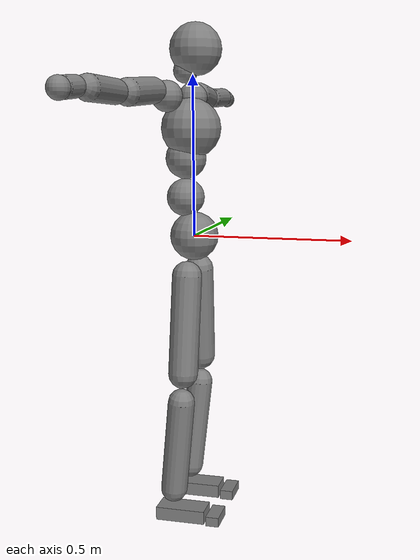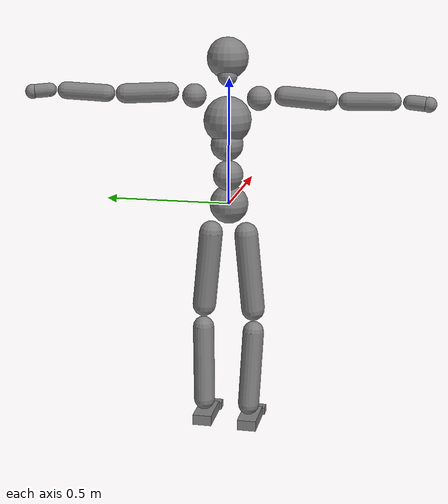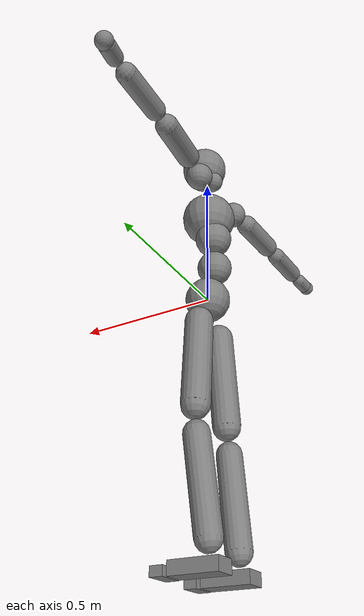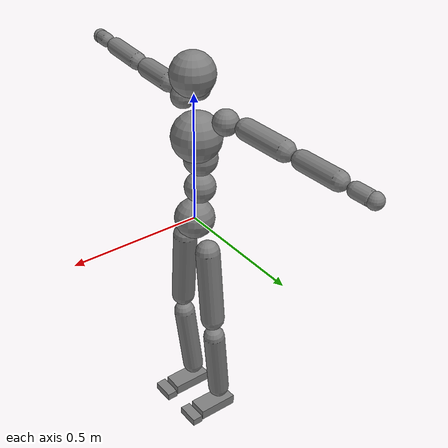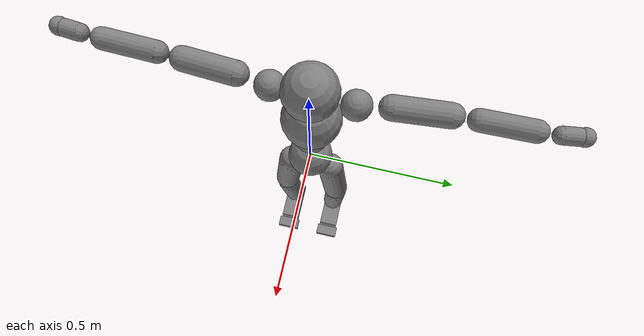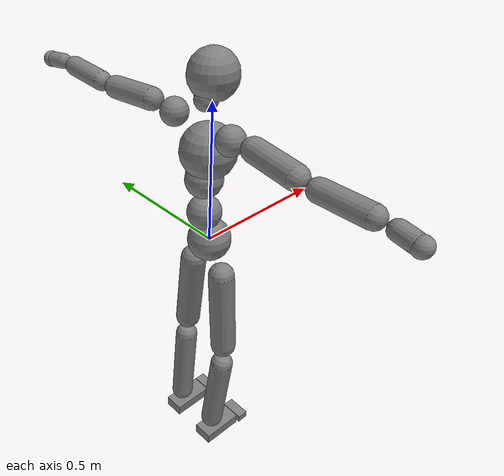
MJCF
<mujoco model="smpl">
  <compiler angle="radian" />
  <default>
    <motor ctrlrange="-1 1" ctrllimited="true" />
    <geom condim="1" friction="1.0 0.05 0.05" solimp=".9 .99 .003" solref=".015 1" />
    <joint limited="true" solimplimit="0 .99 .01" />
    <site size=".04" group="3" />
    <default class="force-torque">
      <site type="box" size=".01 .01 .02" rgba="1 0 0 1" />
    </default>
    <default class="touch">
      <site type="capsule" rgba="0 0 1 .3" />
    </default>
  </default>
  <worldbody>
    <body name="Pelvis" pos="0.000000 0.000000 0.000000">
      <freejoint name="Pelvis" />
      <geom type="sphere" contype="1" conaffinity="1" density="3256.665988" size="0.076500" pos="0.000000 0.000000 0.000000" />
      <body name="L_Hip" pos="-0.006800 0.069500 -0.091400">
        <joint name="L_Hip_x" type="hinge" pos="0 0 0" axis="1 0 0" actuatorfrcrange="-300 300" stiffness="500" damping="50" armature="0.02" range="-0.5236 1.5708" />
        <joint name="L_Hip_y" type="hinge" pos="0 0 0" axis="0 1 0" actuatorfrcrange="-300 300" stiffness="500" damping="50" armature="0.02" range="-2.4435 1.0472" />
        <joint name="L_Hip_z" type="hinge" pos="0 0 0" axis="0 0 1" actuatorfrcrange="-300 300" stiffness="500" damping="50" armature="0.02" range="-0.6109 1.0472" />
        <geom type="capsule" contype="1" conaffinity="1" density="2138.261257" fromto="-0.000315 0.002401 -0.026264 -0.003960 0.030184 -0.330176" size="0.046750" />
        <body name="L_Knee" pos="-0.004500 0.034300 -0.375200">
          <joint name="L_Knee_x" type="hinge" pos="0 0 0" axis="1 0 0" actuatorfrcrange="-200 200" stiffness="500" damping="50" armature="0.02" range="-0.5236 0.5236" />
          <joint name="L_Knee_y" type="hinge" pos="0 0 0" axis="0 1 0" actuatorfrcrange="-200 200" stiffness="500" damping="50" armature="0.02" range="0 2.7925" />
          <joint name="L_Knee_z" type="hinge" pos="0 0 0" axis="0 0 1" actuatorfrcrange="-200 200" stiffness="500" damping="50" armature="0.02" range="-0.5236 0.5236" />
          <geom type="capsule" contype="1" conaffinity="1" density="1778.010539" fromto="-0.005244 -0.001632 -0.047760 -0.038456 -0.011968 -0.350240" size="0.042500" />
          <body name="L_Ankle" pos="-0.043700 -0.013600 -0.398000">
            <joint name="L_Ankle_x" type="hinge" pos="0 0 0" axis="1 0 0" actuatorfrcrange="-100 100" stiffness="400" damping="40" armature="0.02" range="-0.5236 0.5236" />
            <joint name="L_Ankle_y" type="hinge" pos="0 0 0" axis="0 1 0" actuatorfrcrange="-100 100" stiffness="400" damping="40" armature="0.02" range="-0.9599 0.9599" />
            <joint name="L_Ankle_z" type="hinge" pos="0 0 0" axis="0 0 1" actuatorfrcrange="-100 100" stiffness="400" damping="40" armature="0.02" range="-0.6981 0.6981" />
            <geom type="box" contype="1" conaffinity="1" density="1384.083045" pos="0.034600 0.002400 -0.027900" size="0.080000 0.038250 0.021250" quat="1.0000 0.0000 0.0000 0.0000" />
            <body name="L_Toe" pos="0.119300 0.012400 -0.025800">
              <joint name="L_Toe_x" type="hinge" pos="0 0 0" axis="1 0 0" actuatorfrcrange="-75 75" stiffness="200" damping="20" armature="0.02" range="-0.5236 0.5236" />
              <joint name="L_Toe_y" type="hinge" pos="0 0 0" axis="0 1 0" actuatorfrcrange="-75 75" stiffness="200" damping="20" armature="0.02" range="-1.0472 1.0472" />
              <joint name="L_Toe_z" type="hinge" pos="0 0 0" axis="0 0 1" actuatorfrcrange="-75 75" stiffness="200" damping="20" armature="0.02" range="-0.5236 0.5236" />
              <geom type="box" contype="1" conaffinity="1" density="1384.083045" pos="0.025200 -0.010000 -0.008000" size="0.021250 0.045000 0.015300" quat="1.0000 0.0000 0.0000 0.0000" />
            </body>
          </body>
        </body>
      </body>
      <body name="R_Hip" pos="-0.004300 -0.067700 -0.090500">
        <joint name="R_Hip_x" type="hinge" pos="0 0 0" axis="1 0 0" actuatorfrcrange="-300 300" stiffness="500" damping="50" armature="0.02" range="-1.5708 0.5236" />
        <joint name="R_Hip_y" type="hinge" pos="0 0 0" axis="0 1 0" actuatorfrcrange="-300 300" stiffness="500" damping="50" armature="0.02" range="-2.4435 1.0472" />
        <joint name="R_Hip_z" type="hinge" pos="0 0 0" axis="0 0 1" actuatorfrcrange="-300 300" stiffness="500" damping="50" armature="0.02" range="-1.0472 0.6109" />
        <geom type="capsule" contype="1" conaffinity="1" density="2137.208017" fromto="-0.000623 -0.002681 -0.026782 -0.007832 -0.033704 -0.336688" size="0.046750" />
        <body name="R_Knee" pos="-0.008900 -0.038300 -0.382600">
          <joint name="R_Knee_x" type="hinge" pos="0 0 0" axis="1 0 0" actuatorfrcrange="-200 200" stiffness="500" damping="50" armature="0.02" range="-0.5236 0.5236" />
          <joint name="R_Knee_y" type="hinge" pos="0 0 0" axis="0 1 0" actuatorfrcrange="-200 200" stiffness="500" damping="50" armature="0.02" range="0 2.7925" />
          <joint name="R_Knee_z" type="hinge" pos="0 0 0" axis="0 0 1" actuatorfrcrange="-200 200" stiffness="500" damping="50" armature="0.02" range="-0.5236 0.5236" />
          <geom type="capsule" contype="1" conaffinity="1" density="1777.977503" fromto="-0.005076 0.001896 -0.047808 -0.037224 0.013904 -0.350592" size="0.042500" />
          <body name="R_Ankle" pos="-0.042300 0.015800 -0.398400">
            <joint name="R_Ankle_x" type="hinge" pos="0 0 0" axis="1 0 0" actuatorfrcrange="-100 100" stiffness="400" damping="40" armature="0.02" range="-0.5236 0.5236" />
            <joint name="R_Ankle_y" type="hinge" pos="0 0 0" axis="0 1 0" actuatorfrcrange="-100 100" stiffness="400" damping="40" armature="0.02" range="-0.9599 0.9599" />
            <joint name="R_Ankle_z" type="hinge" pos="0 0 0" axis="0 0 1" actuatorfrcrange="-100 100" stiffness="400" damping="40" armature="0.02" range="-0.6981 0.6981" />
            <geom type="box" contype="1" conaffinity="1" density="1384.083045" pos="0.034600 -0.002400 -0.027900" size="0.080000 0.038250 0.021250" quat="1.0000 0.0000 0.0000 0.0000" />
            <body name="R_Toe" pos="0.119300 -0.012400 -0.025800">
              <joint name="R_Toe_x" type="hinge" pos="0 0 0" axis="1 0 0" actuatorfrcrange="-75 75" stiffness="200" damping="20" armature="0.02" range="-0.5236 0.5236" />
              <joint name="R_Toe_y" type="hinge" pos="0 0 0" axis="0 1 0" actuatorfrcrange="-75 75" stiffness="200" damping="20" armature="0.02" range="-1.0472 1.0472" />
              <joint name="R_Toe_z" type="hinge" pos="0 0 0" axis="0 0 1" actuatorfrcrange="-75 75" stiffness="200" damping="20" armature="0.02" range="-0.5236 0.5236" />
              <geom type="box" contype="1" conaffinity="1" density="1384.083045" pos="0.025200 0.010000 -0.008000" size="0.021250 0.045000 0.015300" quat="1.0000 0.0000 0.0000 0.0000" />
            </body>
          </body>
        </body>
      </body>
      <body name="Torso" pos="-0.026700 -0.002500 0.109000">
        <joint name="Torso_x" type="hinge" pos="0 0 0" axis="1 0 0" actuatorfrcrange="-300 300" stiffness="1000" damping="100" armature="0.02" range="-1.0472 1.0472" />
        <joint name="Torso_y" type="hinge" pos="0 0 0" axis="0 1 0" actuatorfrcrange="-300 300" stiffness="1000" damping="100" armature="0.02" range="-1.0472 1.5708" />
        <joint name="Torso_z" type="hinge" pos="0 0 0" axis="0 0 1" actuatorfrcrange="-300 300" stiffness="1000" damping="100" armature="0.02" range="-0.8727 0.8727" />
        <geom type="sphere" contype="1" conaffinity="1" density="3256.665988" size="0.059500" pos="0.000110 0.000550 0.013520" />
        <body name="Spine" pos="0.001100 0.005500 0.135200">
          <joint name="Spine_x" type="hinge" pos="0 0 0" axis="1 0 0" actuatorfrcrange="-200 200" stiffness="1000" damping="100" armature="0.02" range="-1.0472 1.0472" />
          <joint name="Spine_y" type="hinge" pos="0 0 0" axis="0 1 0" actuatorfrcrange="-200 200" stiffness="1000" damping="100" armature="0.02" range="-1.0472 1.5708" />
          <joint name="Spine_z" type="hinge" pos="0 0 0" axis="0 0 1" actuatorfrcrange="-200 200" stiffness="1000" damping="100" armature="0.02" range="-0.8727 0.8727" />
          <geom type="sphere" contype="1" conaffinity="1" density="3256.665988" size="0.063750" pos="0.000000 0.000000 0.000000" />
          <body name="Chest" pos="0.025400 0.001500 0.052900">
            <joint name="Chest_x" type="hinge" pos="0 0 0" axis="1 0 0" actuatorfrcrange="-150 150" stiffness="1000" damping="100" armature="0.02" range="-1.0472 1.0472" />
            <joint name="Chest_y" type="hinge" pos="0 0 0" axis="0 1 0" actuatorfrcrange="-150 150" stiffness="1000" damping="100" armature="0.02" range="-1.0472 1.5708" />
            <joint name="Chest_z" type="hinge" pos="0 0 0" axis="0 0 1" actuatorfrcrange="-150 150" stiffness="1000" damping="100" armature="0.02" range="-0.8727 0.8727" />
            <geom type="sphere" contype="1" conaffinity="1" density="3256.665988" size="0.093500" pos="-0.008000 0.000000 0.040000" />
            <body name="Neck" pos="-0.042900 -0.002800 0.213900">
              <joint name="Neck_x" type="hinge" pos="0 0 0" axis="1 0 0" actuatorfrcrange="-75 75" stiffness="500" damping="50" armature="0.02" range="-0.8727 0.8727" />
              <joint name="Neck_y" type="hinge" pos="0 0 0" axis="0 1 0" actuatorfrcrange="-75 75" stiffness="500" damping="50" armature="0.02" range="-0.6981 1.0472" />
              <joint name="Neck_z" type="hinge" pos="0 0 0" axis="0 0 1" actuatorfrcrange="-75 75" stiffness="500" damping="50" armature="0.02" range="-0.7854 0.7854" />
              <geom type="sphere" contype="1" conaffinity="1" density="1628.332994" size="0.038250" pos="0.020000 0.000000 0.000000" />
              <body name="Head" pos="0.051300 0.005200 0.065000">
                <joint name="Head_x" type="hinge" pos="0 0 0" axis="1 0 0" actuatorfrcrange="-25 25" stiffness="200" damping="20" armature="0.02" range="-0.8727 0.8727" />
                <joint name="Head_y" type="hinge" pos="0 0 0" axis="0 1 0" actuatorfrcrange="-25 25" stiffness="200" damping="20" armature="0.02" range="-0.6981 1.0472" />
                <joint name="Head_z" type="hinge" pos="0 0 0" axis="0 0 1" actuatorfrcrange="-25 25" stiffness="200" damping="20" armature="0.02" range="-0.7854 0.7854" />
                <geom type="sphere" contype="1" conaffinity="1" density="1628.332994" size="0.080750" pos="0.000000 0.000000 0.000000" />
              </body>
            </body>
            <body name="L_Thorax" pos="-0.034100 0.078800 0.121700">
              <joint name="L_Thorax_x" type="hinge" pos="0 0 0" axis="1 0 0" actuatorfrcrange="-200 200" stiffness="500" damping="50" armature="0.02" range="-0.6981 0.5236" />
              <joint name="L_Thorax_y" type="hinge" pos="0 0 0" axis="0 1 0" actuatorfrcrange="-200 200" stiffness="500" damping="50" armature="0.02" range="-0.5236 0.5236" />
              <joint name="L_Thorax_z" type="hinge" pos="0 0 0" axis="0 0 1" actuatorfrcrange="-200 200" stiffness="500" damping="50" armature="0.02" range="-0.5236 0.5236" />
              <geom type="sphere" contype="1" conaffinity="1" density="1628.332994" size="0.046750" pos="-0.004450 0.045500 0.015250" />
              <body name="L_Shoulder" pos="-0.008900 0.091000 0.030500">
                <joint name="L_Shoulder_x" type="hinge" pos="0 0 0" axis="1 0 0" actuatorfrcrange="-150 150" stiffness="400" damping="40" armature="0.02" range="-2.3562 1.5708" />
                <joint name="L_Shoulder_y" type="hinge" pos="0 0 0" axis="0 1 0" actuatorfrcrange="-150 150" stiffness="400" damping="40" armature="0.02" range="-1.5708 1.5708" />
                <joint name="L_Shoulder_z" type="hinge" pos="0 0 0" axis="0 0 1" actuatorfrcrange="-150 150" stiffness="400" damping="40" armature="0.02" range="-2.7925 1.0472" />
                <geom type="capsule" contype="1" conaffinity="1" density="1440.477003" fromto="-0.005500 0.051920 -0.002560 -0.023375 0.220660 -0.010880" size="0.038250" />
                <body name="L_Elbow" pos="-0.027500 0.259600 -0.012800">
                  <joint name="L_Elbow_x" type="hinge" pos="0 0 0" axis="1 0 0" actuatorfrcrange="-100 100" stiffness="300" damping="30" armature="0.02" range="-0.5236 0.5236" />
                  <joint name="L_Elbow_y" type="hinge" pos="0 0 0" axis="0 1 0" actuatorfrcrange="-100 100" stiffness="300" damping="30" armature="0.02" range="-0.5236 0.5236" />
                  <joint name="L_Elbow_z" type="hinge" pos="0 0 0" axis="0 0 1" actuatorfrcrange="-100 100" stiffness="300" damping="30" armature="0.02" range="-2.7925 0" />
                  <geom type="capsule" contype="1" conaffinity="1" density="1437.455440" fromto="-0.000180 0.037380 0.001350 -0.000900 0.199400 0.007200" size="0.034000" />
                  <body name="L_Wrist" pos="-0.001200 0.249200 0.009000">
                    <joint name="L_Wrist_x" type="hinge" pos="0 0 0" axis="1 0 0" actuatorfrcrange="-75 75" stiffness="200" damping="20" armature="0.02" range="-1.5708 1.5708" />
                    <joint name="L_Wrist_y" type="hinge" pos="0 0 0" axis="0 1 0" actuatorfrcrange="-75 75" stiffness="200" damping="20" armature="0.02" range="-1.5708 1.5708" />
                    <joint name="L_Wrist_z" type="hinge" pos="0 0 0" axis="0 0 1" actuatorfrcrange="-75 75" stiffness="200" damping="20" armature="0.02" range="-1.0472 1.0472" />
                    <geom type="capsule" contype="1" conaffinity="1" density="1484.719215" fromto="-0.003000 0.016800 -0.001600 -0.012000 0.067200 -0.006500" size="0.027030" />
                    <body name="L_Hand" pos="-0.014900 0.084000 -0.008200">
                      <joint name="L_Hand_x" type="hinge" pos="0 0 0" axis="1 0 0" actuatorfrcrange="-50 50" stiffness="100" damping="10" armature="0.02" range="-1.5708 1.5708" />
                      <joint name="L_Hand_y" type="hinge" pos="0 0 0" axis="0 1 0" actuatorfrcrange="-50 50" stiffness="100" damping="10" armature="0.02" range="-1.5708 1.5708" />
                      <joint name="L_Hand_z" type="hinge" pos="0 0 0" axis="0 0 1" actuatorfrcrange="-50 50" stiffness="100" damping="10" armature="0.02" range="-1.5708 1.5708" />
                      <geom type="sphere" contype="1" conaffinity="1" density="1628.332994" size="0.028645" pos="0.000000 0.000000 0.000000" />
                    </body>
                  </body>
                </body>
              </body>
            </body>
            <body name="R_Thorax" pos="-0.038600 -0.081800 0.118800">
              <joint name="R_Thorax_x" type="hinge" pos="0 0 0" axis="1 0 0" actuatorfrcrange="-200 200" stiffness="500" damping="50" armature="0.02" range="-0.5236 0.6981" />
              <joint name="R_Thorax_y" type="hinge" pos="0 0 0" axis="0 1 0" actuatorfrcrange="-200 200" stiffness="500" damping="50" armature="0.02" range="-0.5236 0.5236" />
              <joint name="R_Thorax_z" type="hinge" pos="0 0 0" axis="0 0 1" actuatorfrcrange="-200 200" stiffness="500" damping="50" armature="0.02" range="-0.5236 0.5236" />
              <geom type="sphere" contype="1" conaffinity="1" density="1628.332994" size="0.046750" pos="-0.004550 -0.048000 0.016300" />
              <body name="R_Shoulder" pos="-0.009100 -0.096000 0.032600">
                <joint name="R_Shoulder_x" type="hinge" pos="0 0 0" axis="1 0 0" actuatorfrcrange="-150 150" stiffness="400" damping="40" armature="0.02" range="-1.5708 2.3562" />
                <joint name="R_Shoulder_y" type="hinge" pos="0 0 0" axis="0 1 0" actuatorfrcrange="-150 150" stiffness="400" damping="40" armature="0.02" range="-1.5708 1.5708" />
                <joint name="R_Shoulder_z" type="hinge" pos="0 0 0" axis="0 0 1" actuatorfrcrange="-150 150" stiffness="400" damping="40" armature="0.02" range="-1.0472 2.7925" />
                <geom type="capsule" contype="1" conaffinity="1" density="1441.562565" fromto="-0.004280 -0.050740 -0.002660 -0.018190 -0.215645 -0.011305" size="0.038250" />
                <body name="R_Elbow" pos="-0.021400 -0.253700 -0.013300">
                  <joint name="R_Elbow_x" type="hinge" pos="0 0 0" axis="1 0 0" actuatorfrcrange="-100 100" stiffness="300" damping="30" armature="0.02" range="-0.5236 0.5236" />
                  <joint name="R_Elbow_y" type="hinge" pos="0 0 0" axis="0 1 0" actuatorfrcrange="-100 100" stiffness="300" damping="30" armature="0.02" range="-0.5236 0.5236" />
                  <joint name="R_Elbow_z" type="hinge" pos="0 0 0" axis="0 0 1" actuatorfrcrange="-100 100" stiffness="300" damping="30" armature="0.02" range="0 2.7925" />
                  <geom type="capsule" contype="1" conaffinity="1" density="1436.461907" fromto="-0.000840 -0.038295 0.001170 -0.004480 -0.204240 0.006240" size="0.034000" />
                  <body name="R_Wrist" pos="-0.005600 -0.255300 0.007800">
                    <joint name="R_Wrist_x" type="hinge" pos="0 0 0" axis="1 0 0" actuatorfrcrange="-75 75" stiffness="200" damping="20" armature="0.02" range="-1.5708 1.5708" />
                    <joint name="R_Wrist_y" type="hinge" pos="0 0 0" axis="0 1 0" actuatorfrcrange="-75 75" stiffness="200" damping="20" armature="0.02" range="-1.5708 1.5708" />
                    <joint name="R_Wrist_z" type="hinge" pos="0 0 0" axis="0 0 1" actuatorfrcrange="-75 75" stiffness="200" damping="20" armature="0.02" range="-1.0472 1.0472" />
                    <geom type="capsule" contype="1" conaffinity="1" density="1486.332179" fromto="-0.002100 -0.016900 -0.001200 -0.008300 -0.067700 -0.004900" size="0.027710" />
                    <body name="R_Hand" pos="-0.010300 -0.084600 -0.006100">
                      <joint name="R_Hand_x" type="hinge" pos="0 0 0" axis="1 0 0" actuatorfrcrange="-50 50" stiffness="100" damping="10" armature="0.02" range="-1.5708 1.5708" />
                      <joint name="R_Hand_y" type="hinge" pos="0 0 0" axis="0 1 0" actuatorfrcrange="-50 50" stiffness="100" damping="10" armature="0.02" range="-1.5708 1.5708" />
                      <joint name="R_Hand_z" type="hinge" pos="0 0 0" axis="0 0 1" actuatorfrcrange="-50 50" stiffness="100" damping="10" armature="0.02" range="-1.5708 1.5708" />
                      <geom type="sphere" contype="1" conaffinity="1" density="1628.332994" size="0.028900" pos="0.000000 0.000000 0.000000" />
                    </body>
                  </body>
                </body>
              </body>
            </body>
          </body>
        </body>
      </body>
    </body>
  </worldbody>
  <actuator>
    <motor name="L_Hip_x" joint="L_Hip_x" gear="300" />
    <motor name="L_Hip_y" joint="L_Hip_y" gear="300" />
    <motor name="L_Hip_z" joint="L_Hip_z" gear="300" />
    <motor name="L_Knee_x" joint="L_Knee_x" gear="200" />
    <motor name="L_Knee_y" joint="L_Knee_y" gear="200" />
    <motor name="L_Knee_z" joint="L_Knee_z" gear="200" />
    <motor name="L_Ankle_x" joint="L_Ankle_x" gear="100" />
    <motor name="L_Ankle_y" joint="L_Ankle_y" gear="100" />
    <motor name="L_Ankle_z" joint="L_Ankle_z" gear="100" />
    <motor name="L_Toe_x" joint="L_Toe_x" gear="75" />
    <motor name="L_Toe_y" joint="L_Toe_y" gear="75" />
    <motor name="L_Toe_z" joint="L_Toe_z" gear="75" />
    <motor name="R_Hip_x" joint="R_Hip_x" gear="300" />
    <motor name="R_Hip_y" joint="R_Hip_y" gear="300" />
    <motor name="R_Hip_z" joint="R_Hip_z" gear="300" />
    <motor name="R_Knee_x" joint="R_Knee_x" gear="200" />
    <motor name="R_Knee_y" joint="R_Knee_y" gear="200" />
    <motor name="R_Knee_z" joint="R_Knee_z" gear="200" />
    <motor name="R_Ankle_x" joint="R_Ankle_x" gear="100" />
    <motor name="R_Ankle_y" joint="R_Ankle_y" gear="100" />
    <motor name="R_Ankle_z" joint="R_Ankle_z" gear="100" />
    <motor name="R_Toe_x" joint="R_Toe_x" gear="75" />
    <motor name="R_Toe_y" joint="R_Toe_y" gear="75" />
    <motor name="R_Toe_z" joint="R_Toe_z" gear="75" />
    <motor name="Torso_x" joint="Torso_x" gear="300" />
    <motor name="Torso_y" joint="Torso_y" gear="300" />
    <motor name="Torso_z" joint="Torso_z" gear="300" />
    <motor name="Spine_x" joint="Spine_x" gear="200" />
    <motor name="Spine_y" joint="Spine_y" gear="200" />
    <motor name="Spine_z" joint="Spine_z" gear="200" />
    <motor name="Chest_x" joint="Chest_x" gear="150" />
    <motor name="Chest_y" joint="Chest_y" gear="150" />
    <motor name="Chest_z" joint="Chest_z" gear="150" />
    <motor name="Neck_x" joint="Neck_x" gear="75" />
    <motor name="Neck_y" joint="Neck_y" gear="75" />
    <motor name="Neck_z" joint="Neck_z" gear="75" />
    <motor name="Head_x" joint="Head_x" gear="25" />
    <motor name="Head_y" joint="Head_y" gear="25" />
    <motor name="Head_z" joint="Head_z" gear="25" />
    <motor name="L_Thorax_x" joint="L_Thorax_x" gear="200" />
    <motor name="L_Thorax_y" joint="L_Thorax_y" gear="200" />
    <motor name="L_Thorax_z" joint="L_Thorax_z" gear="200" />
    <motor name="L_Shoulder_x" joint="L_Shoulder_x" gear="150" />
    <motor name="L_Shoulder_y" joint="L_Shoulder_y" gear="150" />
    <motor name="L_Shoulder_z" joint="L_Shoulder_z" gear="150" />
    <motor name="L_Elbow_x" joint="L_Elbow_x" gear="100" />
    <motor name="L_Elbow_y" joint="L_Elbow_y" gear="100" />
    <motor name="L_Elbow_z" joint="L_Elbow_z" gear="100" />
    <motor name="L_Wrist_x" joint="L_Wrist_x" gear="75" />
    <motor name="L_Wrist_y" joint="L_Wrist_y" gear="75" />
    <motor name="L_Wrist_z" joint="L_Wrist_z" gear="75" />
    <motor name="L_Hand_x" joint="L_Hand_x" gear="50" />
    <motor name="L_Hand_y" joint="L_Hand_y" gear="50" />
    <motor name="L_Hand_z" joint="L_Hand_z" gear="50" />
    <motor name="R_Thorax_x" joint="R_Thorax_x" gear="200" />
    <motor name="R_Thorax_y" joint="R_Thorax_y" gear="200" />
    <motor name="R_Thorax_z" joint="R_Thorax_z" gear="200" />
    <motor name="R_Shoulder_x" joint="R_Shoulder_x" gear="150" />
    <motor name="R_Shoulder_y" joint="R_Shoulder_y" gear="150" />
    <motor name="R_Shoulder_z" joint="R_Shoulder_z" gear="150" />
    <motor name="R_Elbow_x" joint="R_Elbow_x" gear="100" />
    <motor name="R_Elbow_y" joint="R_Elbow_y" gear="100" />
    <motor name="R_Elbow_z" joint="R_Elbow_z" gear="100" />
    <motor name="R_Wrist_x" joint="R_Wrist_x" gear="75" />
    <motor name="R_Wrist_y" joint="R_Wrist_y" gear="75" />
    <motor name="R_Wrist_z" joint="R_Wrist_z" gear="75" />
    <motor name="R_Hand_x" joint="R_Hand_x" gear="50" />
    <motor name="R_Hand_y" joint="R_Hand_y" gear="50" />
    <motor name="R_Hand_z" joint="R_Hand_z" gear="50" />
  </actuator>
</mujoco>
